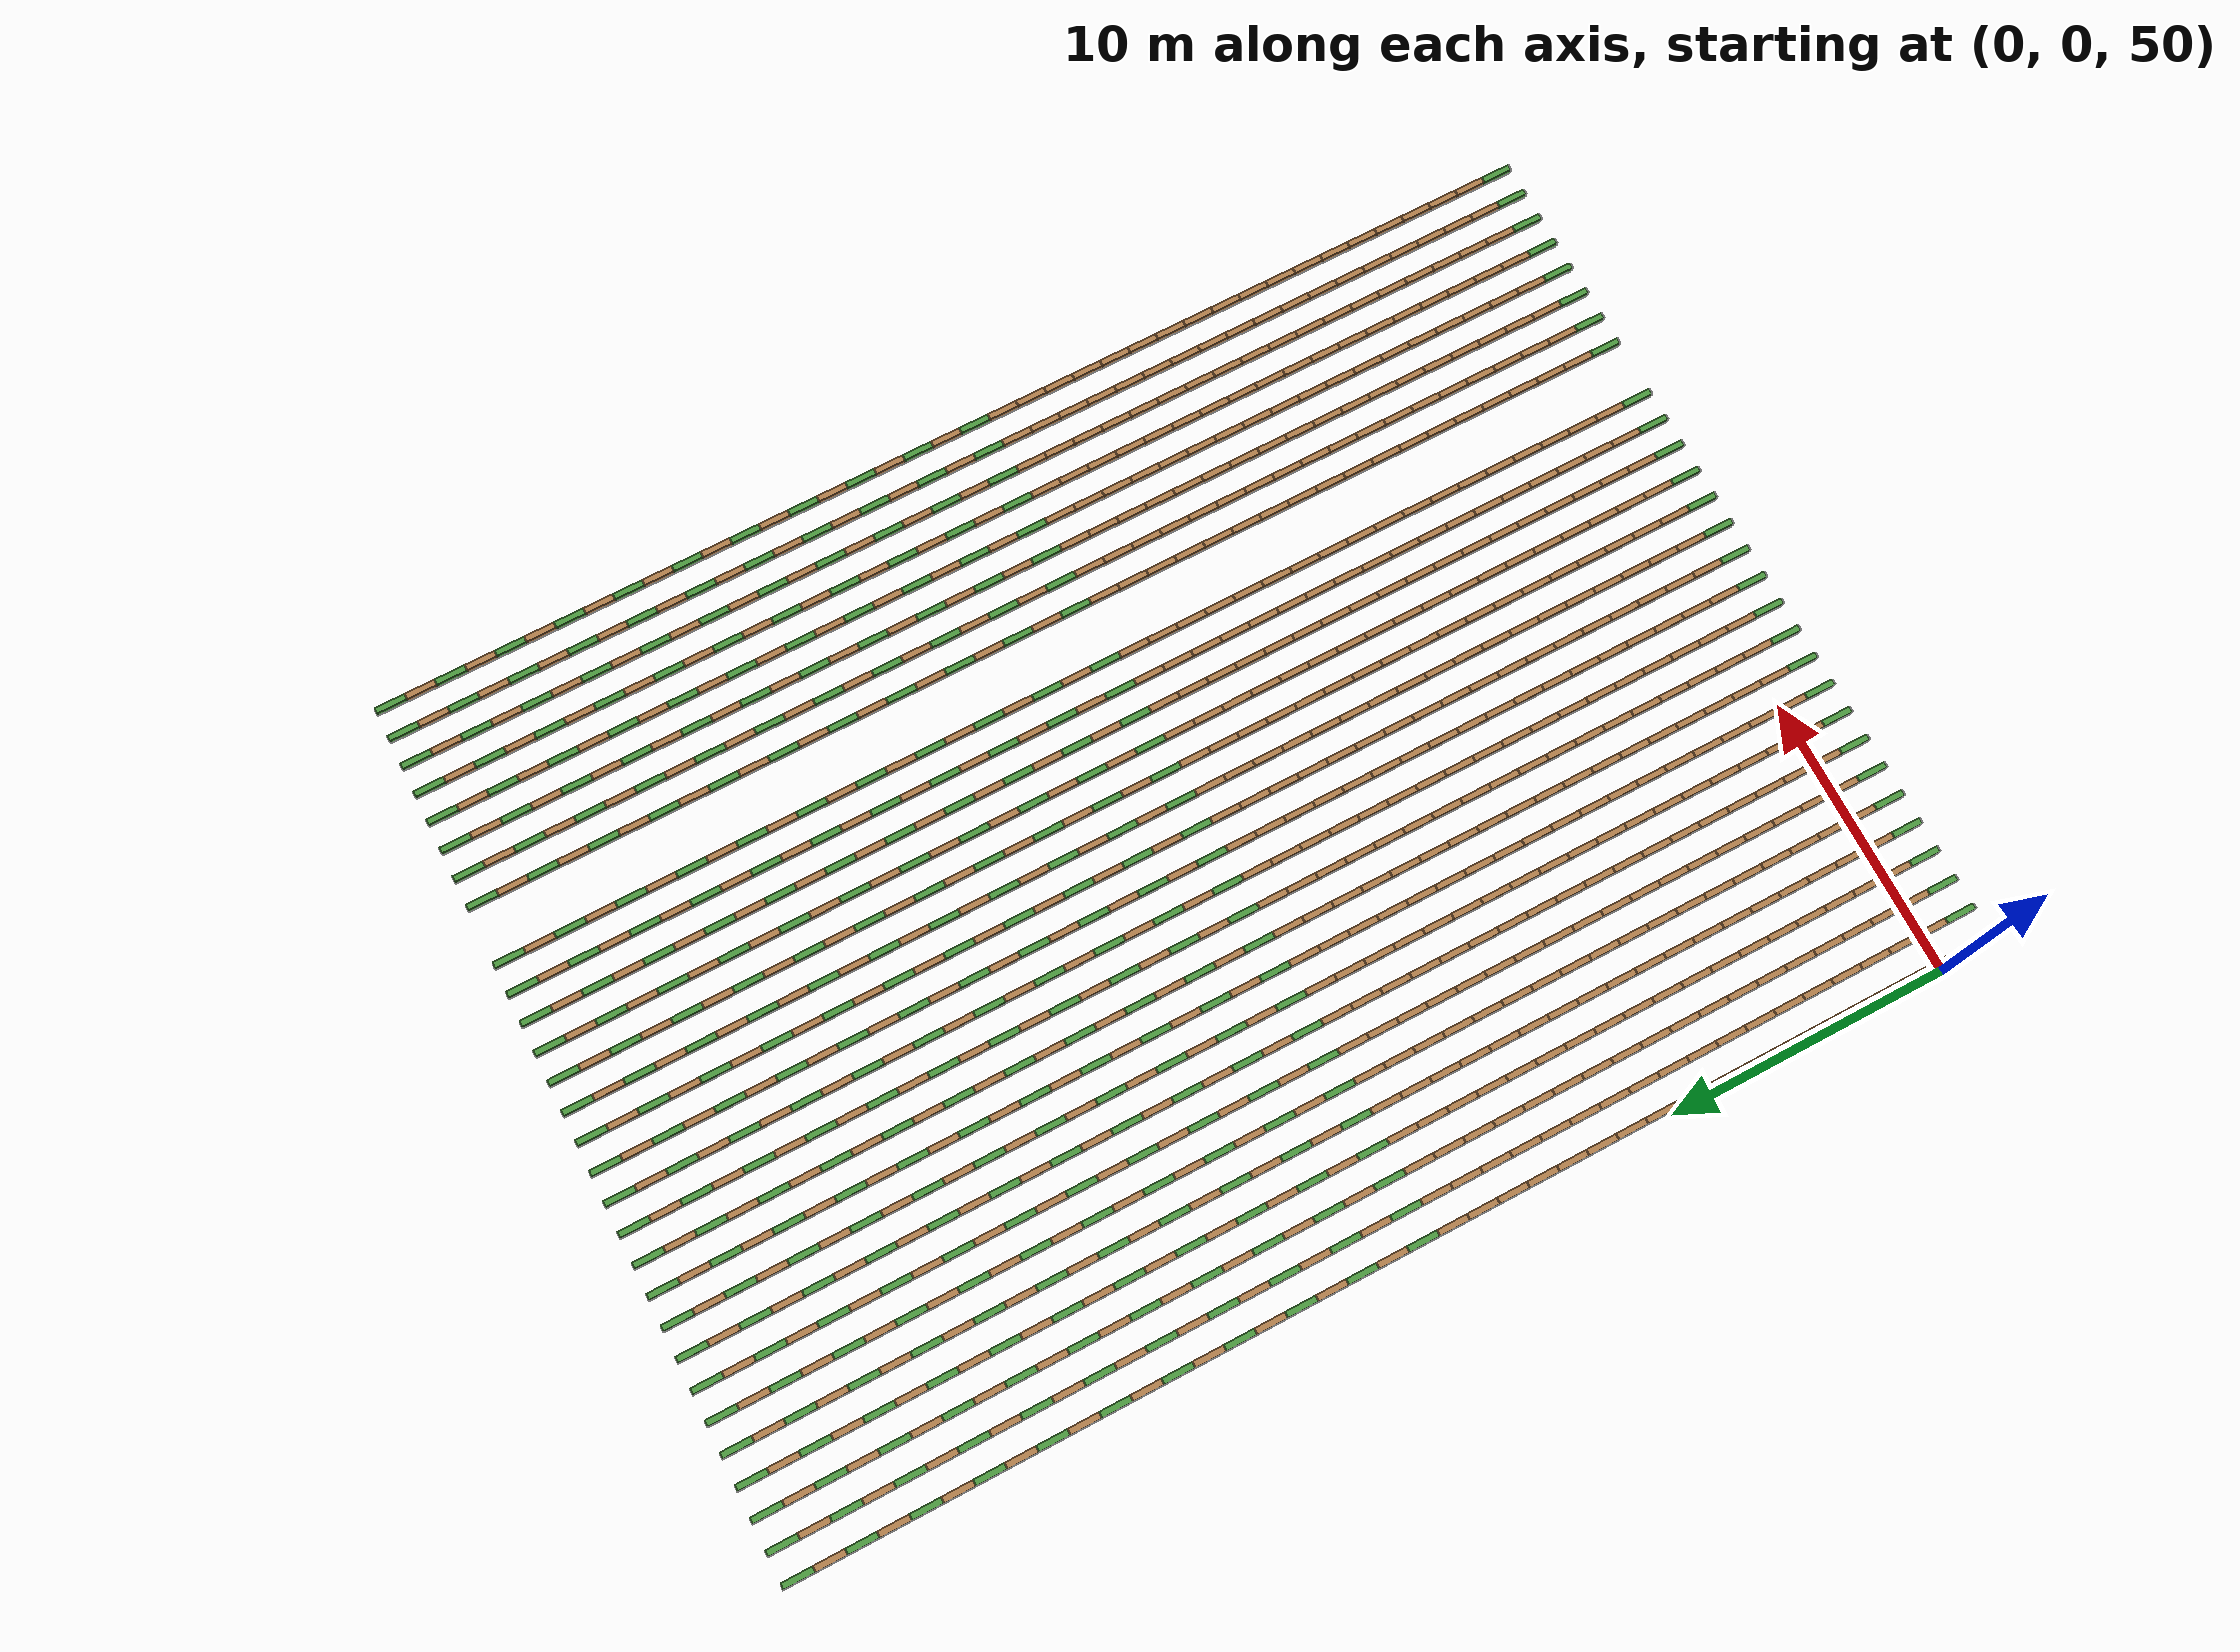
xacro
<?xml version="1.0"?>
<robot name="continuous_pendulum"
       xmlns:xi="http://www.w3.org/2001/XInclude"
       xmlns:gazebo="http://playerstage.sourceforge.net/gazebo/xmlschema/#gz"
       xmlns:model="http://playerstage.sourceforge.net/gazebo/xmlschema/#model"
       xmlns:sensor="http://playerstage.sourceforge.net/gazebo/xmlschema/#sensor"
       xmlns:body="http://playerstage.sourceforge.net/gazebo/xmlschema/#body"
       xmlns:geom="http://playerstage.sourceforge.net/gazebo/xmlschema/#geom"
       xmlns:joint="http://playerstage.sourceforge.net/gazebo/xmlschema/#joint"
       xmlns:interface="http://playerstage.sourceforge.net/gazebo/xmlschema/#interface"
       xmlns:rendering="http://playerstage.sourceforge.net/gazebo/xmlschema/#rendering"
       xmlns:renderable="http://playerstage.sourceforge.net/gazebo/xmlschema/#renderable"
       xmlns:controller="http://playerstage.sourceforge.net/gazebo/xmlschema/#controller"
       xmlns:xacro="http://ros.org/wiki/xacro"
       xmlns:physics="http://playerstage.sourceforge.net/gazebo/xmlschema/#physics">

  <link name="world"/>
  <!--
     A pendulum constructed from single continuous link and a mass with some moment of inertia
  -->
  <xacro:macro name="one_link" params="link_name parent *axis *origin material">
    <joint name="${link_name}_joint" type="continuous" >
      <insert_block name="origin"/>
      <insert_block name="axis"/>
      <parent link="${parent}" />
      <child link="${link_name}" />
      <dynamics damping="0.0" />
    </joint>
    <link name="${link_name}">
      <inertial >
        <mass value="1.0" />
        <origin xyz="0 1 0" />
        <inertia  ixx="0.0" ixy="0.0"  ixz="0.0"  iyy="0.0"  iyz="0.0"  izz="0.0" />
      </inertial>
      <visual >
        <origin xyz="0 0.5 0" rpy="0 0 0" />
        <geometry>
          <box size="0.2 1.0 0.2" />
        </geometry>
      </visual>
      <collision >
        <origin xyz="0 0.5 0" rpy="0 0 0" />
        <geometry>
          <box size="0.2 1.0 0.2" />
        </geometry>
      </collision>
    </link>
    <gazebo reference="${link_name}">
      <material>${material}</material>
      <turnGravityOff>false</turnGravityOff>
    </gazebo>
  </xacro:macro>
  <xacro:macro name="pendulum" params="chain_num x_offset">
    <xacro:one_link link_name="link1_${chain_num}" parent="world" material="Gazebo/GrassFloor">
      <origin xyz="${x_offset} 0 55" rpy="0 0 0"/>
      <axis xyz="1 0 0" />
    </xacro:one_link>
    <xacro:one_link link_name="link2_${chain_num}" parent="link1_${chain_num}" material="Gazebo/LightWood">
      <origin xyz="0 1 0" rpy="0 0 0"/>
      <axis xyz="1 0 0" />
    </xacro:one_link>
    <xacro:one_link link_name="link3_${chain_num}" parent="link2_${chain_num}" material="Gazebo/LightWood">
      <origin xyz="0 1 0" rpy="0 0 0"/>
      <axis xyz="1 0 0" />
    </xacro:one_link>
    <xacro:one_link link_name="link4_${chain_num}" parent="link3_${chain_num}" material="Gazebo/LightWood">
      <origin xyz="0 1 0" rpy="0 0 0"/>
      <axis xyz="1 0 0" />
    </xacro:one_link>
    <xacro:one_link link_name="link5_${chain_num}" parent="link4_${chain_num}" material="Gazebo/LightWood">
      <origin xyz="0 1 0" rpy="0 0 0"/>
      <axis xyz="1 0 0" />
    </xacro:one_link>
    <xacro:one_link link_name="link6_${chain_num}" parent="link5_${chain_num}" material="Gazebo/LightWood">
      <origin xyz="0 1 0" rpy="0 0 0"/>
      <axis xyz="1 0 0" />
    </xacro:one_link>
    <xacro:one_link link_name="link7_${chain_num}" parent="link6_${chain_num}" material="Gazebo/LightWood">
      <origin xyz="0 1 0" rpy="0 0 0"/>
      <axis xyz="1 0 0" />
    </xacro:one_link>
    <xacro:one_link link_name="link8_${chain_num}" parent="link7_${chain_num}" material="Gazebo/LightWood">
      <origin xyz="0 1 0" rpy="0 0 0"/>
      <axis xyz="1 0 0" />
    </xacro:one_link>
    <xacro:one_link link_name="link9_${chain_num}" parent="link8_${chain_num}" material="Gazebo/LightWood">
      <origin xyz="0 1 0" rpy="0 0 0"/>
      <axis xyz="1 0 0" />
    </xacro:one_link>
    <xacro:one_link link_name="link10_${chain_num}" parent="link9_${chain_num}" material="Gazebo/LightWood">
      <origin xyz="0 1 0" rpy="0 0 0"/>
      <axis xyz="1 0 0" />
    </xacro:one_link>
    <xacro:one_link link_name="link11_${chain_num}" parent="link10_${chain_num}" material="Gazebo/LightWood">
      <origin xyz="0 1 0" rpy="0 0 0"/>
      <axis xyz="1 0 0" />
    </xacro:one_link>
    <xacro:one_link link_name="link12_${chain_num}" parent="link11_${chain_num}" material="Gazebo/LightWood">
      <origin xyz="0 1 0" rpy="0 0 0"/>
      <axis xyz="1 0 0" />
    </xacro:one_link>
    <xacro:one_link link_name="link13_${chain_num}" parent="link12_${chain_num}" material="Gazebo/LightWood">
      <origin xyz="0 1 0" rpy="0 0 0"/>
      <axis xyz="1 0 0" />
    </xacro:one_link>
    <xacro:one_link link_name="link14_${chain_num}" parent="link13_${chain_num}" material="Gazebo/LightWood">
      <origin xyz="0 1 0" rpy="0 0 0"/>
      <axis xyz="1 0 0" />
    </xacro:one_link>
    <xacro:one_link link_name="link15_${chain_num}" parent="link14_${chain_num}" material="Gazebo/LightWood">
      <origin xyz="0 1 0" rpy="0 0 0"/>
      <axis xyz="1 0 0" />
    </xacro:one_link>
    <xacro:one_link link_name="link16_${chain_num}" parent="link15_${chain_num}" material="Gazebo/LightWood">
      <origin xyz="0 1 0" rpy="0 0 0"/>
      <axis xyz="1 0 0" />
    </xacro:one_link>
    <xacro:one_link link_name="link17_${chain_num}" parent="link16_${chain_num}" material="Gazebo/LightWood">
      <origin xyz="0 1 0" rpy="0 0 0"/>
      <axis xyz="1 0 0" />
    </xacro:one_link>
    <xacro:one_link link_name="link18_${chain_num}" parent="link17_${chain_num}" material="Gazebo/LightWood">
      <origin xyz="0 1 0" rpy="0 0 0"/>
      <axis xyz="1 0 0" />
    </xacro:one_link>
    <xacro:one_link link_name="link19_${chain_num}" parent="link18_${chain_num}" material="Gazebo/LightWood">
      <origin xyz="0 1 0" rpy="0 0 0"/>
      <axis xyz="1 0 0" />
    </xacro:one_link>
    <xacro:one_link link_name="link20_${chain_num}" parent="link19_${chain_num}" material="Gazebo/GrassFloor">
      <origin xyz="0 1 0" rpy="0 0 0"/>
      <axis xyz="1 0 0" />
    </xacro:one_link>
    <xacro:one_link link_name="link21_${chain_num}" parent="link20_${chain_num}" material="Gazebo/LightWood">
      <origin xyz="0 1 0" rpy="0 0 0"/>
      <axis xyz="1 0 0" />
    </xacro:one_link>
    <xacro:one_link link_name="link22_${chain_num}" parent="link21_${chain_num}" material="Gazebo/GrassFloor">
      <origin xyz="0 1 0" rpy="0 0 0"/>
      <axis xyz="1 0 0" />
    </xacro:one_link>
    <xacro:one_link link_name="link23_${chain_num}" parent="link22_${chain_num}" material="Gazebo/LightWood">
      <origin xyz="0 1 0" rpy="0 0 0"/>
      <axis xyz="1 0 0" />
    </xacro:one_link>
    <xacro:one_link link_name="link24_${chain_num}" parent="link23_${chain_num}" material="Gazebo/GrassFloor">
      <origin xyz="0 1 0" rpy="0 0 0"/>
      <axis xyz="1 0 0" />
    </xacro:one_link>
    <xacro:one_link link_name="link25_${chain_num}" parent="link24_${chain_num}" material="Gazebo/LightWood">
      <origin xyz="0 1 0" rpy="0 0 0"/>
      <axis xyz="1 0 0" />
    </xacro:one_link>
    <xacro:one_link link_name="link26_${chain_num}" parent="link25_${chain_num}" material="Gazebo/GrassFloor">
      <origin xyz="0 1 0" rpy="0 0 0"/>
      <axis xyz="1 0 0" />
    </xacro:one_link>
    <xacro:one_link link_name="link27_${chain_num}" parent="link26_${chain_num}" material="Gazebo/LightWood">
      <origin xyz="0 1 0" rpy="0 0 0"/>
      <axis xyz="1 0 0" />
    </xacro:one_link>
    <xacro:one_link link_name="link28_${chain_num}" parent="link27_${chain_num}" material="Gazebo/GrassFloor">
      <origin xyz="0 1 0" rpy="0 0 0"/>
      <axis xyz="1 0 0" />
    </xacro:one_link>
    <xacro:one_link link_name="link29_${chain_num}" parent="link28_${chain_num}" material="Gazebo/LightWood">
      <origin xyz="0 1 0" rpy="0 0 0"/>
      <axis xyz="1 0 0" />
    </xacro:one_link>
    <xacro:one_link link_name="link30_${chain_num}" parent="link29_${chain_num}" material="Gazebo/GrassFloor">
      <origin xyz="0 1 0" rpy="0 0 0"/>
      <axis xyz="1 0 0" />
    </xacro:one_link>
    <xacro:one_link link_name="link31_${chain_num}" parent="link30_${chain_num}" material="Gazebo/LightWood">
      <origin xyz="0 1 0" rpy="0 0 0"/>
      <axis xyz="1 0 0" />
    </xacro:one_link>
    <xacro:one_link link_name="link32_${chain_num}" parent="link31_${chain_num}" material="Gazebo/GrassFloor">
      <origin xyz="0 1 0" rpy="0 0 0"/>
      <axis xyz="1 0 0" />
    </xacro:one_link>
    <xacro:one_link link_name="link33_${chain_num}" parent="link32_${chain_num}" material="Gazebo/LightWood">
      <origin xyz="0 1 0" rpy="0 0 0"/>
      <axis xyz="1 0 0" />
    </xacro:one_link>
    <xacro:one_link link_name="link34_${chain_num}" parent="link33_${chain_num}" material="Gazebo/GrassFloor">
      <origin xyz="0 1 0" rpy="0 0 0"/>
      <axis xyz="1 0 0" />
    </xacro:one_link>
    <xacro:one_link link_name="link35_${chain_num}" parent="link34_${chain_num}" material="Gazebo/LightWood">
      <origin xyz="0 1 0" rpy="0 0 0"/>
      <axis xyz="1 0 0" />
    </xacro:one_link>
    <xacro:one_link link_name="link36_${chain_num}" parent="link35_${chain_num}" material="Gazebo/GrassFloor">
      <origin xyz="0 1 0" rpy="0 0 0"/>
      <axis xyz="1 0 0" />
    </xacro:one_link>
    <xacro:one_link link_name="link37_${chain_num}" parent="link36_${chain_num}" material="Gazebo/LightWood">
      <origin xyz="0 1 0" rpy="0 0 0"/>
      <axis xyz="1 0 0" />
    </xacro:one_link>
    <xacro:one_link link_name="link38_${chain_num}" parent="link37_${chain_num}" material="Gazebo/GrassFloor">
      <origin xyz="0 1 0" rpy="0 0 0"/>
      <axis xyz="1 0 0" />
    </xacro:one_link>
    <xacro:one_link link_name="link39_${chain_num}" parent="link38_${chain_num}" material="Gazebo/LightWood">
      <origin xyz="0 1 0" rpy="0 0 0"/>
      <axis xyz="1 0 0" />
    </xacro:one_link>
    <xacro:one_link link_name="link40_${chain_num}" parent="link39_${chain_num}" material="Gazebo/GrassFloor">
      <origin xyz="0 1 0" rpy="0 0 0"/>
      <axis xyz="1 0 0" />
    </xacro:one_link>
  </xacro:macro>

  <xacro:pendulum x_offset="0" chain_num="0" />
  <xacro:pendulum x_offset="1" chain_num="1" />
  <xacro:pendulum x_offset="2" chain_num="2" />
  <xacro:pendulum x_offset="3" chain_num="3" />
  <xacro:pendulum x_offset="4" chain_num="4" />
  <xacro:pendulum x_offset="5" chain_num="5" />
  <xacro:pendulum x_offset="6" chain_num="6" />
  <xacro:pendulum x_offset="7" chain_num="7" />
  <xacro:pendulum x_offset="8" chain_num="8" />
  <xacro:pendulum x_offset="9" chain_num="9" />
  <xacro:pendulum x_offset="10" chain_num="10" />
  <xacro:pendulum x_offset="11" chain_num="11" />
  <xacro:pendulum x_offset="12" chain_num="12" />
  <xacro:pendulum x_offset="13" chain_num="13" />
  <xacro:pendulum x_offset="14" chain_num="14" />
  <xacro:pendulum x_offset="15" chain_num="15" />
  <xacro:pendulum x_offset="16" chain_num="16" />
  <xacro:pendulum x_offset="17" chain_num="17" />
  <xacro:pendulum x_offset="18" chain_num="18" />
  <xacro:pendulum x_offset="19" chain_num="19" />
  <xacro:pendulum x_offset="20" chain_num="20" />
  <xacro:pendulum x_offset="22" chain_num="21" />
  <xacro:pendulum x_offset="22" chain_num="22" />
  <xacro:pendulum x_offset="23" chain_num="23" />
  <xacro:pendulum x_offset="24" chain_num="24" />
  <xacro:pendulum x_offset="25" chain_num="25" />
  <xacro:pendulum x_offset="26" chain_num="26" />
  <xacro:pendulum x_offset="27" chain_num="27" />
  <xacro:pendulum x_offset="28" chain_num="28" />
  <xacro:pendulum x_offset="29" chain_num="29" />

  <gazebo>
      <!-- PR2_ACTARRAY -->
      <controller:gazebo_ros_controller_manager name="gazebo_ros_controller_manager" plugin="libgazebo_ros_controller_manager.so">
        <alwaysOn>true</alwaysOn>
        <updateRate>1000.0</updateRate>
        <interface:audio name="gazebo_ros_controller_manager_dummy_iface" />
      </controller:gazebo_ros_controller_manager>

      <!-- gazebo_ros_p3d for position groundtruth -->
      <controller:gazebo_ros_p3d name="p3d_link1_controller" plugin="libgazebo_ros_p3d.so">
          <alwaysOn>true</alwaysOn>
          <updateRate>100.0</updateRate>
          <bodyName>link1</bodyName>
          <topicName>link1_pose</topicName>
          <frameName>map</frameName>
          <interface:position name="p3d_link1_position"/>
      </controller:gazebo_ros_p3d>
      <controller:gazebo_ros_p3d name="p3d_link2_controller" plugin="libgazebo_ros_p3d.so">
          <alwaysOn>true</alwaysOn>
          <updateRate>100.0</updateRate>
          <bodyName>link2</bodyName>
          <topicName>link2_pose</topicName>
          <frameName>map</frameName>
          <interface:position name="p3d_link2_position"/>
      </controller:gazebo_ros_p3d>
  </gazebo>

  <!-- mechanism controls -->
  <transmission type="SimpleTransmission" name="link1_trans">
    <actuator name="link1_motor" />
    <joint name="link1_joint" />
    <mechanicalReduction>1</mechanicalReduction>
    <motorTorqueConstant>1</motorTorqueConstant>
  </transmission>

  <transmission type="SimpleTransmission" name="link2_trans">
    <actuator name="link2_motor" />
    <joint name="link2_joint" />
    <mechanicalReduction>1</mechanicalReduction>
    <motorTorqueConstant>1</motorTorqueConstant>
  </transmission>

</robot>
